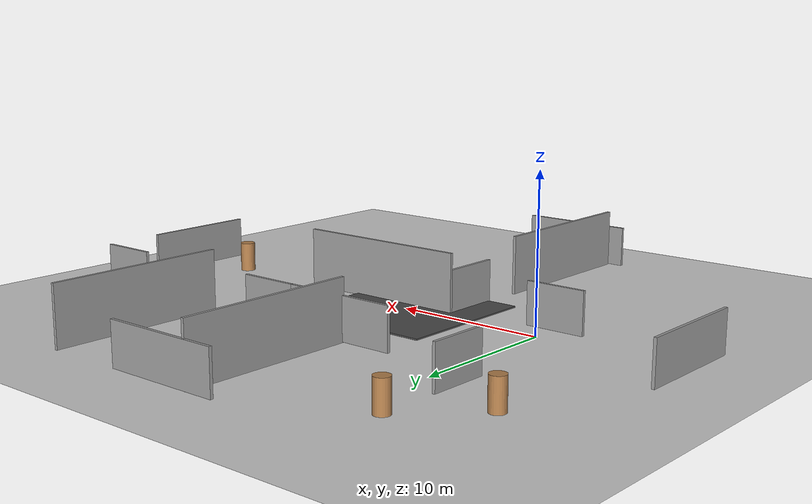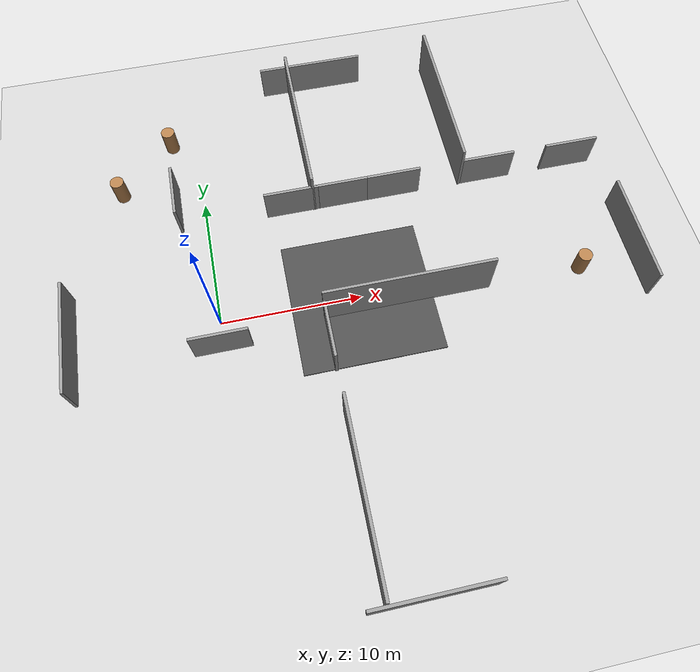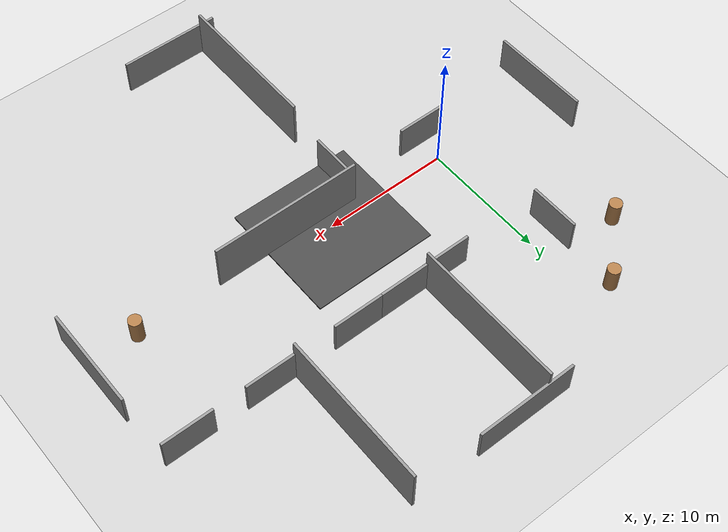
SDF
<sdf version="1.4">
 <world name="default">
  <scene><shadows>0</shadows></scene>
  <physics type="ode">
   <gravity>0 0 -9.81</gravity>
   <ode>
    <solver><type>quick</type><iters>20</iters><sor>1.0</sor></solver>
    <constraints>
     <cfm>0.0</cfm>
     <erp>0.2</erp>
     <contact_max_correcting_vel>100.0</contact_max_correcting_vel>
     <contact_surface_layer>0.0</contact_surface_layer>
    </constraints>
   </ode>
   <real_time_update_rate>1000</real_time_update_rate>
   <max_step_size>0.001</max_step_size>
  </physics>
  <include><uri>model://sun</uri></include>
  <include><uri>model://ground_plane</uri></include>
  <include><uri>model://floor</uri><name>floor</name><pose>10 0 0 0 0 0</pose></include>
  <include><uri>model://w1</uri><name>w1_bottom</name><pose>-10 0.0 0.0 0 0.0 -1.57</pose></include>
  <include><uri>model://w1</uri><name>w1_left</name><pose>10 20 0.0 0 0.0 0.0</pose></include>
  <include><uri>model://w1</uri><name>w1_top</name><pose>30 0.0 0.0 0 0.0 -1.57</pose></include>
  <include><uri>model://w1</uri><name>w1_right</name><pose>10 -20 0.0 0 0.0 0.0</pose></include>
  <include><uri>model://w3</uri><name>w3_no_room_1</name><pose>-6 12.1 0.0 0 0.0 0.0</pose></include>
  <include><uri>model://w3</uri><name>w3_no_room_2</name><pose>-1.9 16 0.0 0 0.0 1.57</pose></include>
  <include><uri>model://w2</uri><name>w3_room_1_1</name><pose>-1.9 10 0.0 0 0.0 1.57</pose></include>
  <include><uri>model://w2</uri><name>w3_room_1_2</name><pose>0 -2 0.0 0 0.0 0.0</pose></include>
  <include><uri>model://w2</uri><name>w3_room_1_3</name><pose>6.5 8.1 0.0 0 0.0 0.0</pose></include>
  <include><uri>model://w4</uri><name>w4_room_1_3</name><pose>8.1 14 0.0 0 0.0 1.57</pose></include>
  <include><uri>model://w2</uri><name>w4_room_2_1</name><pose>10.17 8.11 0.0 0 0.0 0.0</pose></include>
  <include><uri>model://w2</uri><name>w4_room_2_2</name><pose>14.17 8.11 0.0 0 0.0 0.0</pose></include>
  <include><uri>model://w4</uri><name>w4_room_2_3</name><pose>19.4 14 0.0 0 0.0 1.57</pose></include>
  <include><uri>model://w2</uri><name>w4_room_3_1</name><pose>21.4 8.11 0.0 0 0.0 0.0</pose></include>
  <include><uri>model://w2</uri><name>w4_room_3_2</name><pose>27.9 8.11 0.0 0 0.0 0.0</pose></include>
  <include><uri>model://w4</uri><name>w4_warehouse_1</name><pose>7.2 -13.9 0.0 0 0.0 1.57</pose></include>
  <include><uri>model://w4</uri><name>w4_warehouse_2</name><pose>13.14 -1.0 0.0 0 0.0 0.0</pose></include>
  <include><uri>model://w3</uri><name>w4_warehouse_3</name><pose>25.9 -1.0 0.0 0 0.0 0.0</pose></include>
  <include><uri>model://w2</uri><name>w4_warehouse_4</name><pose>7.24 -3.1 0.0 0 0.0 1.57</pose></include>
 </world>
</sdf>

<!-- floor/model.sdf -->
<sdf version="1.5">
  <model name="asphalt_plane">
    <static>true</static>
    <link name="link">
      <collision name="collision">
        <geometry>
          <box>
            <size>200 200 .1</size>
          </box>
        </geometry>
      </collision>
      <visual name="visual">
        <cast_shadows>false</cast_shadows>
        <geometry>
          <box>
            <size>10 10 .1</size>
          </box>
        </geometry>
        <material>
          <script>
            <uri>model://floor/materials/scripts</uri>
            <uri>model://floor/materials/textures</uri>
            <name>vrc/asphalt</name>
          </script>
        </material>
      </visual>
    </link>
  </model>
</sdf>

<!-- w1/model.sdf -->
<sdf version="1.5">
  <model name="grey_wall">
    <static>true</static>
    <link name="link">
      <pose>0 0 1.4 0 0 0</pose>
      <collision name="collision">
        <geometry>
          <box>
            <size>8 0.2 2.8</size>
          </box>
        </geometry>
      </collision>
      <visual name="visual">
        <cast_shadows>false</cast_shadows>
        <geometry>
          <box>
            <size>8 0.2 2.8</size>
          </box>
        </geometry>
        <material>
          <script>
            <uri>model://w1/materials/scripts</uri>
            <uri>model://w1/materials/textures</uri>
            <name>vrc/grey_wall</name>
          </script>
        </material>
      </visual>
    </link>
  </model>
</sdf>

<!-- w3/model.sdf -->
<sdf version="1.5">
  <model name="grey_wall">
    <static>true</static>
    <link name="link">
      <pose>0 0 1 0 0 0</pose>
      <collision name="collision">
        <geometry>
          <cylinder>
            <radius>0.5</radius>
            <length>2</length>
          </cylinder>
        </geometry>
      </collision>
      <visual name="visual">
        <cast_shadows>false</cast_shadows>
        <geometry>
          <cylinder>
            <radius>0.5</radius>
            <length>2</length>
          </cylinder>
        </geometry>
        <material>
          <script>
            <uri>model://w3/materials/scripts</uri>
            <uri>model://w3/materials/textures</uri>
            <name>vrc/wood</name>
          </script>
        </material>
      </visual>
    </link>
  </model>
</sdf>

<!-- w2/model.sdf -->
<sdf version="1.5">
  <model name="grey_wall">
    <static>true</static>
    <link name="link">
      <pose>0 0 1.4 0 0 0</pose>
      <collision name="collision">
        <geometry>
          <box>
            <size>4 0.2 2.8</size>
          </box>
        </geometry>
      </collision>
      <visual name="visual">
        <cast_shadows>false</cast_shadows>
        <geometry>
          <box>
            <size>4 0.2 2.8</size>
          </box>
        </geometry>
        <material>
          <script>
            <uri>model://w2/materials/scripts</uri>
            <uri>model://w2/materials/textures</uri>
            <name>vrc/grey_wall</name>
          </script>
        </material>
      </visual>
    </link>
  </model>
</sdf>

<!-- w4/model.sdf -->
<sdf version="1.5">
  <model name="grey_wall">
    <static>true</static>
    <link name="link">
      <pose>0 0 1.4 0 0 0</pose>
      <collision name="collision">
        <geometry>
          <box>
            <size>12 0.2 5</size>
          </box>
        </geometry>
      </collision>
      <visual name="visual">
        <cast_shadows>false</cast_shadows>
        <geometry>
          <box>
            <size>12 0.2 5</size>
          </box>
        </geometry>
        <material>
          <script>
            <uri>model://w4/materials/scripts</uri>
            <uri>model://w4/materials/textures</uri>
            <name>vrc/grey_wall</name>
          </script>
        </material>
      </visual>
    </link>
  </model>
</sdf>
